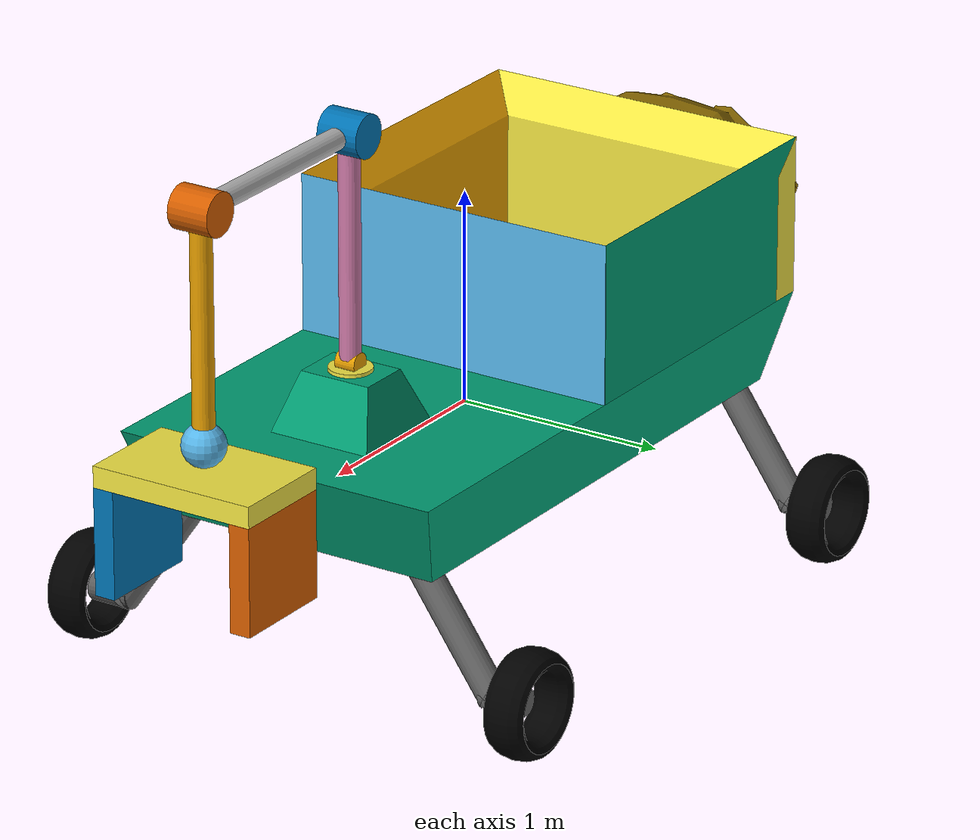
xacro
<?xml version="1.0"?>
<!-- created with Phobos 1.0.1 "Capricious Choutengan" -->
  <robot name="robot" xmlns:xacro="http://wiki.ros.org/xacro">

    <link name="Untitled">
      <inertial>
        <origin xyz="0 0 0" rpy="0 0 0"/>
        <mass value="0.001"/>
        <inertia ixx="0.001" ixy="0" ixz="0" iyy="0.001" iyz="0" izz="0.001"/>
      </inertial>
      <visual name="Cylinder.001">
        <origin xyz="0 0 0" rpy="0 0 0"/>
        <geometry>
          <cylinder radius="0.05" length="0.1"/>
        </geometry>
      </visual>
    </link>

    <link name="Untitled.002">
      <inertial>
        <origin xyz="0 0 0" rpy="0 0 0"/>
        <mass value="0.001"/>
        <inertia ixx="0.001" ixy="0" ixz="0" iyy="0.001" iyz="0" izz="0.001"/>
      </inertial>
      <visual name="brazo_eje3_obj">
        <origin xyz="0 0 0" rpy="-1.5708 0 0"/>
        <geometry>
          <sphere radius="0.1"/>
        </geometry>
      </visual>
      <collision name="brazo_eje3_col">
        <origin xyz="0 0 0" rpy="-1.5708 0 0"/>
        <geometry>
          <sphere radius="0.1"/>
        </geometry>
      </collision>
    </link>

    <link name="anclaje_brazo_link">
      <inertial>
        <origin xyz="0 0 0.05625" rpy="0 0 0"/>
        <mass value="1.0"/>
        <inertia ixx="0.02658" ixy="0" ixz="0" iyy="0.02658" iyz="0" izz="0.04167"/>
      </inertial>
      <visual name="soporte_brazo_obj">
        <origin xyz="0 0 0" rpy="0 0 0"/>
        <geometry>
          <mesh filename="file://$(find robot_description)/meshes/dae/Cube.010.dae" scale="0.25 0.25 0.075"/>
        </geometry>
      </visual>
      <collision name="soporte_brazo_col">
        <origin xyz="0 0 0.05625" rpy="0 0 0"/>
        <geometry>
          <box size="0.5 0.5 0.2625"/>
        </geometry>
      </collision>
    </link>

    <link name="base_pinza_link">
      <inertial>
        <origin xyz="0 0 0" rpy="0 0 0"/>
        <mass value="0.5"/>
        <inertia ixx="0.001" ixy="0" ixz="0" iyy="0.001" iyz="0" izz="0.001"/>
      </inertial>
      <visual name="base_pinza_obj">
        <origin xyz="0 0 0" rpy="-1.5708 0 -0.00175"/>
        <geometry>
          <box size="0.5 0.1 0.8"/>
        </geometry>
      </visual>
      <collision name="base_pinza_col">
        <origin xyz="0 0 0" rpy="-1.5708 0 -0.00175"/>
        <geometry>
          <box size="0.5 0.1 0.8"/>
        </geometry>
      </collision>
    </link>

    <link name="brazo_eje1_link">
      <inertial>
        <origin xyz="0 0 0" rpy="0 0 0"/>
        <mass value="1.0"/>
        <inertia ixx="2e-05" ixy="0" ixz="0" iyy="2e-05" iyz="0" izz="2e-05"/>
      </inertial>
      <visual name="brazo_eje1_obj">
        <origin xyz="0 0 0" rpy="0 0 0"/>
        <geometry>
          <cylinder radius="0.1" length="0.2"/>
        </geometry>
      </visual>
      <collision name="brazo_eje1_col">
        <origin xyz="0 0 0" rpy="0 0 0"/>
        <geometry>
          <cylinder radius="0.1" length="0.2"/>
        </geometry>
      </collision>
    </link>

    <link name="brazo_eje2_link">
      <inertial>
        <origin xyz="0 0 0" rpy="0 0 0"/>
        <mass value="1.0"/>
        <inertia ixx="0.00583" ixy="0" ixz="0" iyy="0.005" iyz="0" izz="0.00583"/>
      </inertial>
      <visual name="brazo_eje2_obj">
        <origin xyz="0 0 0" rpy="0 0 0"/>
        <geometry>
          <cylinder radius="0.1" length="0.2"/>
        </geometry>
      </visual>
      <collision name="brazo_eje2_col">
        <origin xyz="0 0 0" rpy="0 0 0"/>
        <geometry>
          <cylinder radius="0.1" length="0.2"/>
        </geometry>
      </collision>
    </link>

    <link name="brazo_link1">
      <inertial>
        <origin xyz="0 0 0" rpy="0 0 0"/>
        <mass value="1.0"/>
        <inertia ixx="0.001" ixy="0" ixz="0" iyy="0.001" iyz="0" izz="0.001"/>
      </inertial>
      <visual name="brazo_link1_obj">
        <origin xyz="0 0 0" rpy="0 0 0"/>
        <geometry>
          <cylinder radius="0.05" length="1.0"/>
        </geometry>
      </visual>
      <collision name="brazo_link1_col">
        <origin xyz="0 0 0" rpy="0 0 0"/>
        <geometry>
          <cylinder radius="0.05" length="1.0"/>
        </geometry>
      </collision>
    </link>

    <link name="brazo_link2">
      <inertial>
        <origin xyz="0 0 0" rpy="0 0 0"/>
        <mass value="1.0"/>
        <inertia ixx="0.001" ixy="0" ixz="0" iyy="0.001" iyz="0" izz="0.001"/>
      </inertial>
      <visual name="brazo_link2_obj">
        <origin xyz="0 0 0" rpy="0 0 0"/>
        <geometry>
          <cylinder radius="0.05" length="1.0"/>
        </geometry>
      </visual>
      <collision name="brazo_link2_col">
        <origin xyz="0 0 0" rpy="0 0 0"/>
        <geometry>
          <cylinder radius="0.05" length="1.0"/>
        </geometry>
      </collision>
    </link>

    <link name="brazo_link3">
      <inertial>
        <origin xyz="0 0 0" rpy="0 0 0"/>
        <mass value="1.0"/>
        <inertia ixx="0.001" ixy="0" ixz="0" iyy="0.001" iyz="0" izz="0.001"/>
      </inertial>
      <visual name="brazo_link3_obj">
        <origin xyz="0 0 0" rpy="3.14159 0 0"/>
        <geometry>
          <cylinder radius="0.05" length="1.0"/>
        </geometry>
      </visual>
      <collision name="brazo_link3_col">
        <origin xyz="0 0 0" rpy="3.14159 0 0"/>
        <geometry>
          <cylinder radius="0.05" length="1.0"/>
        </geometry>
      </collision>
    </link>

    <link name="cabeza_mono">
      <inertial>
        <origin xyz="0 0 0" rpy="0 0 0"/>
        <mass value="0.001"/>
        <inertia ixx="0.001" ixy="0" ixz="0" iyy="0.001" iyz="0" izz="0.001"/>
      </inertial>
      <visual name="Suzanne">
        <origin xyz="0 0 0" rpy="0 0 0"/>
        <geometry>
          <mesh filename="file://$(find robot_description)/meshes/dae/Suzanne.dae" scale="0.54857 0.29358 0.35556"/>
        </geometry>
        <material name="Material.016"/>
      </visual>
    </link>

    <link name="chasis">
      <inertial>
        <origin xyz="0 0 0" rpy="0 0 0"/>
        <mass value="50.0"/>
        <inertia ixx="2.11781" ixy="0.18492" ixz="0" iyy="7.11432" iyz="-0.01546" izz="8.96889"/>
      </inertial>
      <visual name="base">
        <origin xyz="0 0 0" rpy="0 0 0"/>
        <geometry>
          <mesh filename="file://$(find robot_description)/meshes/dae/Cube.001.dae" scale="1.5 0.8 0.2"/>
        </geometry>
      </visual>
      <collision name="base_col">
        <origin xyz="0 0 0" rpy="0 0 0"/>
        <geometry>
          <mesh filename="file://$(find robot_description)/meshes/dae/Cube.031.dae" scale="1.0 1.0 1.0"/>
        </geometry>
      </collision>
    </link>

    <link name="eje_base_rot_z_link">
      <inertial>
        <origin xyz="0 0 0" rpy="0 0 0"/>
        <mass value="0.001"/>
        <inertia ixx="0.001" ixy="0" ixz="0" iyy="0.001" iyz="0" izz="0.001"/>
      </inertial>
      <visual name="Cylinder">
        <origin xyz="0 0 0" rpy="0 0 0"/>
        <geometry>
          <cylinder radius="0.1" length="0.02"/>
        </geometry>
      </visual>
    </link>

    <link name="eje_dlt_dcha_link">
      <inertial>
        <origin xyz="0 0 0" rpy="0 0 0"/>
        <mass value="1.0"/>
        <inertia ixx="0.00456" ixy="0" ixz="0" iyy="0.00245" iyz="0" izz="0.00456"/>
      </inertial>
      <visual name="eje_dlt_dcha_obj">
        <origin xyz="0 0 0" rpy="1.5708 0 0"/>
        <geometry>
          <cylinder radius="0.07" length="0.2"/>
        </geometry>
        <material name="Material.006"/>
      </visual>
      <collision name="eje_dlt_dcha_col">
        <origin xyz="0 0 0" rpy="1.5708 0 0"/>
        <geometry>
          <cylinder radius="0.07" length="0.2"/>
        </geometry>
      </collision>
    </link>

    <link name="eje_dlt_izq_link">
      <inertial>
        <origin xyz="0 0 0" rpy="0 0 0"/>
        <mass value="1.0"/>
        <inertia ixx="0.00456" ixy="0" ixz="0" iyy="0.00245" iyz="0" izz="0.00456"/>
      </inertial>
      <visual name="eje_dlt_izq_obj">
        <origin xyz="0 0 0" rpy="1.5708 0 0"/>
        <geometry>
          <cylinder radius="0.07" length="0.2"/>
        </geometry>
        <material name="Material.011"/>
      </visual>
      <collision name="eje_dlt_izq_col">
        <origin xyz="0 0 0" rpy="1.5708 0 0"/>
        <geometry>
          <cylinder radius="0.07" length="0.2"/>
        </geometry>
      </collision>
    </link>

    <link name="eje_tr_dcha_link">
      <inertial>
        <origin xyz="0 0 0" rpy="0 0 0"/>
        <mass value="1.0"/>
        <inertia ixx="0.00456" ixy="0" ixz="0" iyy="0.00245" iyz="0" izz="0.00456"/>
      </inertial>
      <visual name="eje_tr_dcha_obj">
        <origin xyz="0 0 0" rpy="1.5708 0 0"/>
        <geometry>
          <cylinder radius="0.07" length="0.2"/>
        </geometry>
        <material name="Material.014"/>
      </visual>
      <collision name="eje_tr_dcha_col">
        <origin xyz="0 0 0" rpy="1.5708 0 0"/>
        <geometry>
          <cylinder radius="0.07" length="0.2"/>
        </geometry>
      </collision>
    </link>

    <link name="eje_tr_izq_link">
      <inertial>
        <origin xyz="0 0 0" rpy="0 0 0"/>
        <mass value="1.0"/>
        <inertia ixx="0.00456" ixy="0" ixz="0" iyy="0.00245" iyz="0" izz="0.00456"/>
      </inertial>
      <visual name="eje_tr_izq_obj">
        <origin xyz="0 0 0" rpy="1.5708 0 0"/>
        <geometry>
          <cylinder radius="0.07" length="0.2"/>
        </geometry>
        <material name="Material.012"/>
      </visual>
      <collision name="eje_tr_izq_col">
        <origin xyz="0 0 0" rpy="1.5708 0 0"/>
        <geometry>
          <cylinder radius="0.07" length="0.2"/>
        </geometry>
      </collision>
    </link>

    <link name="pared_dcha_link">
      <inertial>
        <origin xyz="0 0 0" rpy="0 0 0"/>
        <mass value="3.0"/>
        <inertia ixx="0.14438" ixy="-0.00938" ixz="0.01333" iyy="0.77875" iyz="0" izz="0.64562"/>
      </inertial>
      <visual name="pared_dcha_obj">
        <origin xyz="0 0 0" rpy="0 0 0"/>
        <geometry>
          <mesh filename="file://$(find robot_description)/meshes/dae/Cube.dae" scale="0.075 0.8 0.3"/>
        </geometry>
      </visual>
      <collision name="pared_dcha_col">
        <origin xyz="0 0 0" rpy="0 0 0"/>
        <geometry>
          <mesh filename="file://$(find robot_description)/meshes/dae/Cube.035.dae" scale="1.0 1.0 1.0"/>
        </geometry>
      </collision>
    </link>

    <link name="pared_dlt_link">
      <inertial>
        <origin xyz="0 0 0" rpy="0 0 0"/>
        <mass value="3.0"/>
        <inertia ixx="0.76625" ixy="0.00087" ixz="0" iyy="0.13188" iyz="-0.01067" izz="0.64562"/>
      </inertial>
      <visual name="pared_dlt_obj">
        <origin xyz="0 0 0" rpy="0 0 0"/>
        <geometry>
          <mesh filename="file://$(find robot_description)/meshes/dae/Cube.003.dae" scale="0.075 0.8 0.3"/>
        </geometry>
      </visual>
      <collision name="pared_dlt_col">
        <origin xyz="0 0 0" rpy="0 0 0"/>
        <geometry>
          <mesh filename="file://$(find robot_description)/meshes/dae/Cube.034.dae" scale="1.0 1.0 1.0"/>
        </geometry>
      </collision>
    </link>

    <link name="pared_izq_link">
      <inertial>
        <origin xyz="0 0 0" rpy="0 0 0"/>
        <mass value="3.0"/>
        <inertia ixx="0.13188" ixy="-0.00088" ixz="0.01067" iyy="0.76625" iyz="0" izz="0.64562"/>
      </inertial>
      <visual name="pared_izq_obj">
        <origin xyz="0 0 0" rpy="0 0 0"/>
        <geometry>
          <mesh filename="file://$(find robot_description)/meshes/dae/Cube.004.dae" scale="0.075 0.8 0.3"/>
        </geometry>
      </visual>
      <collision name="pared_izq_col">
        <origin xyz="0 0 0" rpy="0 0 0"/>
        <geometry>
          <mesh filename="file://$(find robot_description)/meshes/dae/Cube.033.dae" scale="1.0 1.0 1.0"/>
        </geometry>
      </collision>
    </link>

    <link name="pared_tr_link">
      <inertial>
        <origin xyz="0 0 0" rpy="0 0 0"/>
        <mass value="3.0"/>
        <inertia ixx="0.77875" ixy="0.00938" ixz="0" iyy="0.14438" iyz="-0.01333" izz="0.64562"/>
      </inertial>
      <visual name="pared_tr_obj">
        <origin xyz="0 0 0" rpy="0 0 0"/>
        <geometry>
          <mesh filename="file://$(find robot_description)/meshes/dae/Cube.005.dae" scale="0.075 0.8 0.3"/>
        </geometry>
      </visual>
      <collision name="pared_tr_col">
        <origin xyz="0 0 0" rpy="0 0 0"/>
        <geometry>
          <mesh filename="file://$(find robot_description)/meshes/dae/Cube.036.dae" scale="1.0 1.0 1.0"/>
        </geometry>
      </collision>
    </link>

    <link name="pinza_dcha_link">
      <inertial>
        <origin xyz="0 0 0" rpy="0 0 0"/>
        <mass value="0.5"/>
        <inertia ixx="0.001" ixy="0" ixz="0" iyy="0.001" iyz="0" izz="0.001"/>
      </inertial>
      <visual name="pinza_dcha_obj">
        <origin xyz="0 0 0" rpy="1.5708 0 0"/>
        <geometry>
          <box size="0.5 0.1 0.5"/>
        </geometry>
      </visual>
      <collision name="pinza_dcha_col">
        <origin xyz="0 0 0" rpy="1.5708 0 0"/>
        <geometry>
          <box size="0.5 0.1 0.5"/>
        </geometry>
      </collision>
    </link>

    <link name="pinza_izq_link">
      <inertial>
        <origin xyz="0 0 0" rpy="0 0 0"/>
        <mass value="0.5"/>
        <inertia ixx="0.001" ixy="0" ixz="0" iyy="0.001" iyz="0" izz="0.001"/>
      </inertial>
      <visual name="pinza_izq_obj">
        <origin xyz="0 0 0" rpy="-1.5708 0 0"/>
        <geometry>
          <box size="0.5 0.1 0.5"/>
        </geometry>
      </visual>
      <collision name="pinza_izq_col">
        <origin xyz="0 0 0" rpy="-1.5708 0 0"/>
        <geometry>
          <box size="0.5 0.1 0.5"/>
        </geometry>
      </collision>
    </link>

    <link name="rueda_dlt_dcha_link">
      <inertial>
        <origin xyz="0 0 0" rpy="0 0 0"/>
        <mass value="1.0"/>
        <inertia ixx="0.01662" ixy="0" ixz="0" iyy="0.02926" iyz="0" izz="0.01662"/>
      </inertial>
      <visual name="rueda_dlt_dcha_obj">
        <origin xyz="0 0 0" rpy="-3.14159 0 0"/>
        <geometry>
          <mesh filename="file://$(find robot_description)/meshes/dae/Torus.006.dae" scale="0.2 0.2 0.4"/>
        </geometry>
        <material name="Material"/>
      </visual>
      <collision name="rueda_dlt_dcha_col">
        <origin xyz="0 0 0" rpy="-3.14159 0 0"/>
        <geometry>
          <mesh filename="file://$(find robot_description)/meshes/dae/Torus.004.dae" scale="1.0 1.0 1.0"/>
        </geometry>
      </collision>
    </link>

    <link name="rueda_dlt_izq_link">
      <inertial>
        <origin xyz="0 0 0" rpy="0 0 0"/>
        <mass value="1.0"/>
        <inertia ixx="0.01662" ixy="0" ixz="0" iyy="0.02926" iyz="0" izz="0.01662"/>
      </inertial>
      <visual name="rueda_dlt_izq_obj">
        <origin xyz="0 0 0" rpy="-3.14159 0 0"/>
        <geometry>
          <mesh filename="file://$(find robot_description)/meshes/dae/Torus.007.dae" scale="0.2 0.2 0.4"/>
        </geometry>
        <material name="Material.001"/>
      </visual>
      <collision name="rueda_dlt_izq_col">
        <origin xyz="0 0 0" rpy="-3.14159 0 0"/>
        <geometry>
          <mesh filename="file://$(find robot_description)/meshes/dae/Torus.008.dae" scale="1.0 1.0 1.0"/>
        </geometry>
      </collision>
    </link>

    <link name="rueda_tr_dcha_link">
      <inertial>
        <origin xyz="0 0 0" rpy="0 0 0"/>
        <mass value="1.0"/>
        <inertia ixx="0.01662" ixy="0" ixz="0" iyy="0.02926" iyz="0" izz="0.01662"/>
      </inertial>
      <visual name="rueda_tr_dcha_obj">
        <origin xyz="0 0 0" rpy="0 -3.14159 0"/>
        <geometry>
          <mesh filename="file://$(find robot_description)/meshes/dae/Torus.002.dae" scale="0.2 0.2 0.4"/>
        </geometry>
        <material name="Material.005"/>
      </visual>
      <collision name="rueda_tr_dcha_col">
        <origin xyz="0 0 0" rpy="0 -3.14159 0"/>
        <geometry>
          <mesh filename="file://$(find robot_description)/meshes/dae/Torus.010.dae" scale="1.0 1.0 1.0"/>
        </geometry>
      </collision>
    </link>

    <link name="rueda_tr_izq_link">
      <inertial>
        <origin xyz="0 0 0" rpy="0 0 0"/>
        <mass value="1.0"/>
        <inertia ixx="0.01662" ixy="0" ixz="0" iyy="0.02926" iyz="0" izz="0.01662"/>
      </inertial>
      <visual name="rueda_tr_izq_obj">
        <origin xyz="0 0 0" rpy="-3.14159 0 0"/>
        <geometry>
          <mesh filename="file://$(find robot_description)/meshes/dae/Torus.000.dae" scale="0.2 0.2 0.4"/>
        </geometry>
        <material name="Material.004"/>
      </visual>
      <collision name="rueda_tr_izq_col">
        <origin xyz="0 0 0" rpy="-3.14159 0 0"/>
        <geometry>
          <mesh filename="file://$(find robot_description)/meshes/dae/Torus.001.dae" scale="1.0 1.0 1.0"/>
        </geometry>
      </collision>
    </link>

    <link name="susp_dlt_dcha_link">
      <inertial>
        <origin xyz="0 0 0" rpy="0 0 0"/>
        <mass value="2.0"/>
        <inertia ixx="2e-05" ixy="0" ixz="0" iyy="2e-05" iyz="-4e-05" izz="0.00201"/>
      </inertial>
      <visual name="susp_dlt_dcha_obj">
        <origin xyz="0 0 0" rpy="0 0 0"/>
        <geometry>
          <cylinder radius="0.07" length="0.8"/>
        </geometry>
        <material name="Material.009"/>
      </visual>
      <collision name="susp_dlt_dcha_col">
        <origin xyz="0 0 0" rpy="0 0 0"/>
        <geometry>
          <cylinder radius="0.07" length="0.8"/>
        </geometry>
      </collision>
    </link>

    <link name="susp_dlt_izq_link">
      <inertial>
        <origin xyz="0 0 0" rpy="0 0 0"/>
        <mass value="2.0"/>
        <inertia ixx="0.10912" ixy="0" ixz="0" iyy="0.07472" iyz="0.04901" izz="0.0393"/>
      </inertial>
      <visual name="susp_dlt_izq_obj">
        <origin xyz="0 0 0" rpy="0 0 0"/>
        <geometry>
          <cylinder radius="0.07" length="0.8"/>
        </geometry>
        <material name="Material.010"/>
      </visual>
      <collision name="susp_dlt_izq_col">
        <origin xyz="0 0 0" rpy="0 0 0"/>
        <geometry>
          <cylinder radius="0.07" length="0.8"/>
        </geometry>
      </collision>
    </link>

    <link name="susp_tr_dcha_link">
      <inertial>
        <origin xyz="0 0 0" rpy="0 0 0"/>
        <mass value="2.0"/>
        <inertia ixx="0.1091" ixy="0" ixz="0" iyy="0.0747" iyz="-0.04901" izz="0.03927"/>
      </inertial>
      <visual name="susp_tr_dcha_obj">
        <origin xyz="0 0 0" rpy="0 0 0"/>
        <geometry>
          <cylinder radius="0.07" length="0.8"/>
        </geometry>
        <material name="Material.015"/>
      </visual>
      <collision name="susp_tr_dcha_col">
        <origin xyz="0 0 0" rpy="0 0 0"/>
        <geometry>
          <mesh filename="file://$(find robot_description)/meshes/dae/Cylinder.027.dae" scale="1.0 1.0 1.0"/>
        </geometry>
      </collision>
    </link>

    <link name="susp_tr_izq_link">
      <inertial>
        <origin xyz="0 0 0" rpy="0 0 0"/>
        <mass value="2.0"/>
        <inertia ixx="0.10912" ixy="0" ixz="0" iyy="0.07472" iyz="0.04901" izz="0.0393"/>
      </inertial>
      <visual name="susp_tr_izq_obj">
        <origin xyz="0 0 0" rpy="0 0 0"/>
        <geometry>
          <cylinder radius="0.07" length="0.8"/>
        </geometry>
        <material name="Material.013"/>
      </visual>
      <collision name="susp_tr_izq_col">
        <origin xyz="0 0 0" rpy="0 0 0"/>
        <geometry>
          <cylinder radius="0.07" length="0.8"/>
        </geometry>
      </collision>
    </link>

    <joint name="Untitled" type="revolute">
      <origin xyz="0 0 0.03" rpy="1.5708 0 0"/>
      <parent link="eje_base_rot_z_link"/>
      <child link="Untitled"/>
      <axis xyz="0 0 1.0"/>
      <limit lower="-0.5236" upper="0.5236" effort="0" velocity="0"/>
    </joint>

    <joint name="Untitled.002" type="revolute">
      <origin xyz="0 0 0.52" rpy="-1.5708 0 0"/>
      <parent link="brazo_link3"/>
      <child link="Untitled.002"/>
      <axis xyz="0 0 1.0"/>
      <limit lower="-1.5708" upper="1.5708" effort="0" velocity="0"/>
    </joint>

    <joint name="anclaje_brazo_joint" type="fixed">
      <origin xyz="0.9 0 0.275" rpy="0 0 0"/>
      <parent link="chasis"/>
      <child link="anclaje_brazo_link"/>
    </joint>

    <joint name="base_pinza_ljoint" type="fixed">
      <origin xyz="0 -0.15 0" rpy="1.5708 0 0"/>
      <parent link="Untitled.002"/>
      <child link="base_pinza_link"/>
    </joint>

    <joint name="brazo_eje1_joint" type="revolute">
      <origin xyz="0 0 0.54" rpy="1.5708 0 0"/>
      <parent link="brazo_link1"/>
      <child link="brazo_eje1_link"/>
      <axis xyz="0 0 1.0"/>
      <limit lower="-0.7854" upper="3.14159" effort="0" velocity="0.1"/>
    </joint>

    <joint name="brazo_eje2_joint" type="revolute">
      <origin xyz="0 0 0.5" rpy="1.5708 -1.5708 0"/>
      <parent link="brazo_link2"/>
      <child link="brazo_eje2_link"/>
      <axis xyz="0 0 1.0"/>
      <limit lower="0" upper="3.14159" effort="0" velocity="0"/>
    </joint>

    <joint name="brazo_joint1" type="fixed">
      <origin xyz="0 0.52 0" rpy="-1.5708 0 0"/>
      <parent link="Untitled"/>
      <child link="brazo_link1"/>
    </joint>

    <joint name="brazo_joint2" type="fixed">
      <origin xyz="0.6 0 0" rpy="-1.5708 0 -1.5708"/>
      <parent link="brazo_eje1_link"/>
      <child link="brazo_link2"/>
    </joint>

    <joint name="brazo_joint3" type="continuous">
      <origin xyz="0 -0.54 0" rpy="1.5708 0 0"/>
      <parent link="brazo_eje2_link"/>
      <child link="brazo_link3"/>
      <axis xyz="0 0 1.0"/>
      <limit effort="3.0" velocity="2.0"/>
    </joint>

    <joint name="cabeza_mono_joint" type="fixed">
      <origin xyz="-1.75 0 0.55" rpy="0 0 -1.5708"/>
      <parent link="chasis"/>
      <child link="cabeza_mono"/>
    </joint>

    <joint name="eje_base_rot_z_joint" type="continuous">
      <origin xyz="0 0 0.195" rpy="0 0 0"/>
      <parent link="anclaje_brazo_link"/>
      <child link="eje_base_rot_z_link"/>
      <axis xyz="0 0 1.0"/>
      <limit effort="0" velocity="0.1"/>
    </joint>

    <joint name="eje_dlt_dcha_joint" type="fixed">
      <origin xyz="0 0.05682 0.40641" rpy="-2.52957 0 0"/>
      <parent link="susp_dlt_dcha_link"/>
      <child link="eje_dlt_dcha_link"/>
    </joint>

    <joint name="eje_dlt_izq_joint" type="floating">
      <origin xyz="0 0.05682 0.40641" rpy="-0.61202 -3.14159 0"/>
      <parent link="susp_dlt_izq_link"/>
      <child link="eje_dlt_izq_link"/>
    </joint>

    <joint name="eje_tr_dcha_joint" type="floating">
      <origin xyz="0 0.05682 0.40641" rpy="-2.52957 0 0"/>
      <parent link="susp_tr_dcha_link"/>
      <child link="eje_tr_dcha_link"/>
    </joint>

    <joint name="eje_tr_izq_joint" type="fixed">
      <origin xyz="0 0.05682 0.40641" rpy="-0.61202 3.14159 0"/>
      <parent link="susp_tr_izq_link"/>
      <child link="eje_tr_izq_link"/>
    </joint>

    <joint name="pared_dcha_joint" type="fixed">
      <origin xyz="-0.7 -0.725 0.5" rpy="0 0 1.5708"/>
      <parent link="chasis"/>
      <child link="pared_dcha_link"/>
    </joint>

    <joint name="pared_dlt_joint" type="fixed">
      <origin xyz="0.03 0 0.5" rpy="0 0 0"/>
      <parent link="chasis"/>
      <child link="pared_dlt_link"/>
    </joint>

    <joint name="pared_izq_joint" type="fixed">
      <origin xyz="-0.7 0.725 0.5" rpy="0 0 1.5708"/>
      <parent link="chasis"/>
      <child link="pared_izq_link"/>
    </joint>

    <joint name="pared_tr_joint" type="fixed">
      <origin xyz="-1.425 0 0.5" rpy="0 0 0"/>
      <parent link="chasis"/>
      <child link="pared_tr_link"/>
    </joint>

    <joint name="pinza _izq_joint" type="prismatic">
      <origin xyz="0 -0.35 0.3" rpy="-1.5708 0 0"/>
      <parent link="base_pinza_link"/>
      <child link="pinza_izq_link"/>
      <axis xyz="0 0 1.0"/>
      <limit lower="0" upper="0.06" effort="0" velocity="200.0"/>
    </joint>

    <joint name="pinza_dcha_joint" type="prismatic">
      <origin xyz="0 0.35 0.3" rpy="1.5708 0 0"/>
      <parent link="base_pinza_link"/>
      <child link="pinza_dcha_link"/>
      <axis xyz="0 0 1.0"/>
      <limit lower="0" upper="0.06" effort="0" velocity="200.0"/>
    </joint>

    <joint name="rueda_dlt_dcha_joint" type="continuous">
      <origin xyz="0 -0.12 0" rpy="1.5708 0 -3.14159"/>
      <parent link="eje_dlt_dcha_link"/>
      <child link="rueda_dlt_dcha_link"/>
      <axis xyz="0 0 1.0"/>
      <limit effort="0" velocity="0"/>
    </joint>

    <joint name="rueda_dlt_izq_joint" type="continuous">
      <origin xyz="0 0.12 0" rpy="-1.5708 0 0"/>
      <parent link="eje_dlt_izq_link"/>
      <child link="rueda_dlt_izq_link"/>
      <axis xyz="0 0 1.0"/>
      <limit effort="0" velocity="0"/>
    </joint>

    <joint name="rueda_tr_dcha_joint" type="continuous">
      <origin xyz="0 -0.12 0" rpy="-1.5708 0 0"/>
      <parent link="eje_tr_dcha_link"/>
      <child link="rueda_tr_dcha_link"/>
      <axis xyz="0 0 1.0"/>
      <limit effort="0" velocity="0"/>
    </joint>

    <joint name="rueda_tr_izq_joint" type="continuous">
      <origin xyz="0 0.12 0" rpy="-1.5708 0 0"/>
      <parent link="eje_tr_izq_link"/>
      <child link="rueda_tr_izq_link"/>
      <axis xyz="0 0 1.0"/>
      <limit effort="0" velocity="0"/>
    </joint>

    <joint name="susp_dlt_dcha_joint" type="fixed">
      <origin xyz="1.25 -0.75 -0.4" rpy="2.52957 0 0"/>
      <parent link="chasis"/>
      <child link="susp_dlt_dcha_link"/>
    </joint>

    <joint name="susp_dlt_izq_joint" type="fixed">
      <origin xyz="1.25 0.75 -0.4" rpy="-0.61202 3.14159 0"/>
      <parent link="chasis"/>
      <child link="susp_dlt_izq_link"/>
    </joint>

    <joint name="susp_tr_dcha_joint" type="fixed">
      <origin xyz="-1.25 -0.75 -0.4" rpy="2.52957 0 0"/>
      <parent link="chasis"/>
      <child link="susp_tr_dcha_link"/>
    </joint>

    <joint name="susp_tr_izq_joint" type="fixed">
      <origin xyz="-1.25 0.75 -0.4" rpy="-0.61202 3.14159 0"/>
      <parent link="chasis"/>
      <child link="susp_tr_izq_link"/>
    </joint>

    <material name="Material">
      <color rgba="0 0 0 1.0"/>
    </material>

    <material name="Material.001">
      <color rgba="0.00082 0.00082 0.00082 1.0"/>
    </material>

    <material name="Material.004">
      <color rgba="0 0 0 1.0"/>
    </material>

    <material name="Material.005">
      <color rgba="0 0 0 1.0"/>
    </material>

    <material name="Material.006">
      <color rgba="0.36 0.36 0.36 1.0"/>
    </material>

    <material name="Material.009">
      <color rgba="0.4 0.4 0.4 1.0"/>
    </material>

    <material name="Material.010">
      <color rgba="0.4 0.4 0.4 1.0"/>
    </material>

    <material name="Material.011">
      <color rgba="0.4 0.4 0.4 1.0"/>
    </material>

    <material name="Material.012">
      <color rgba="0.4 0.4 0.4 1.0"/>
    </material>

    <material name="Material.013">
      <color rgba="0.4 0.4 0.4 1.0"/>
    </material>

    <material name="Material.014">
      <color rgba="0.4 0.4 0.4 1.0"/>
    </material>

    <material name="Material.015">
      <color rgba="0.4 0.4 0.4 1.0"/>
    </material>

    <material name="Material.016">
      <color rgba="0.49693 0.37967 0 1.0"/>
    </material>

  </robot>
